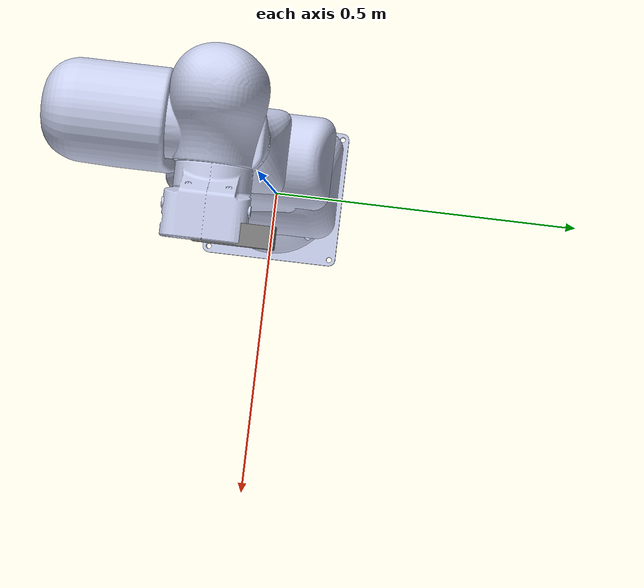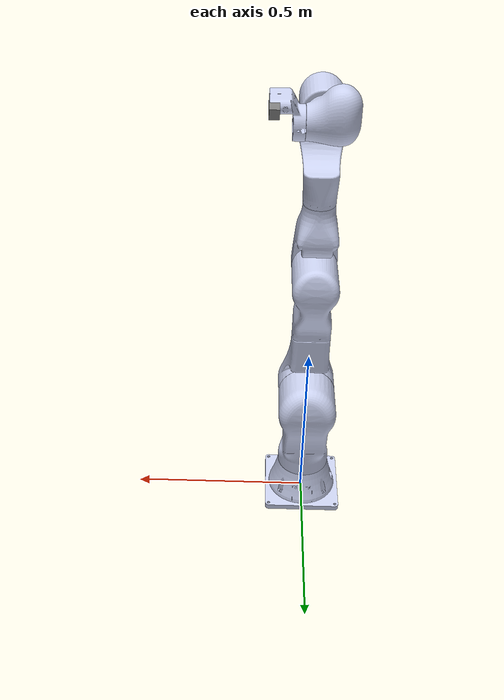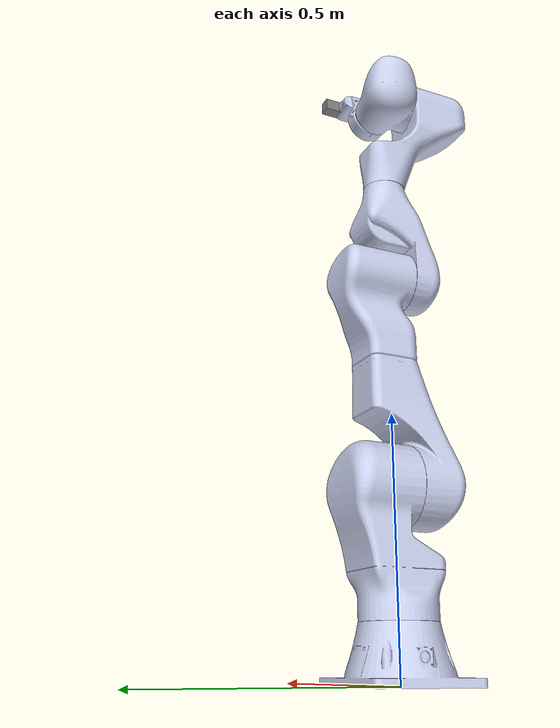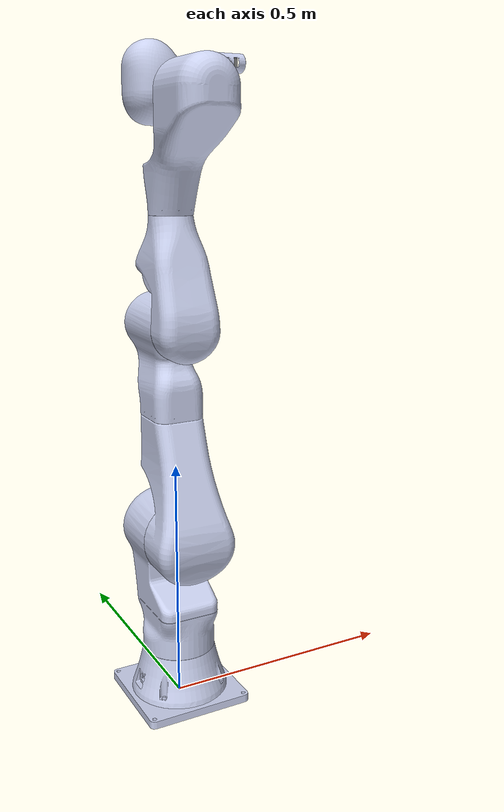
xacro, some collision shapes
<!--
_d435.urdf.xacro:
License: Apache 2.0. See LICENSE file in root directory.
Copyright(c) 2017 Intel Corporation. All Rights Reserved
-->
<?xml version="1.0"?>
<robot name="scorpio" xmlns:xacro="http://www.ros.org/wiki/xacro">

  <xacro:arg name="ns" default=""/>
  <xacro:include filename="$(find scorpio_description)/urdf/arm/arm.urdf.xacro"/>

  <!-- gazebo plugin -->
  <xacro:include filename="$(find scorpio_description)/urdf/common.gazebo.xacro"/>

  <!-- robot arm -->
  <xacro:scorpio_arm ns="$(arg ns)"/>

</robot>

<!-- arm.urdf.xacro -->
<robot xmlns:xacro="http://www.ros.org/wiki/xacro">

  <xacro:include filename="$(find scorpio_description)/urdf/arm/arm.transmission.xacro" />
  <xacro:include filename="$(find scorpio_description)/urdf/sensors/_d435.urdf.xacro" />

  <!-- Inertia calculating -->
  <xacro:macro name="cylinder_inertial" params="radius length mass *origin">
    <inertial>
      <mass value="${mass}" />
      <xacro:insert_block name="origin" />
      <inertia ixx="${0.0833333 * mass * (3 * radius * radius + length * length)}" ixy="0.0" ixz="0.0"
        iyy="${0.0833333 * mass * (3 * radius * radius + length * length)}" iyz="0.0"
        izz="${0.5 * mass * radius * radius}" />
    </inertial>
  </xacro:macro>

  <!-- Inertia parameters -->
  <xacro:property name="base_mass" value="0.01" />  <!-- This mass might be incorrect -->
  <xacro:property name="shoulder_mass" value="0.007778" />
  <xacro:property name="upper_arm_mass" value="0.00593" />
  <xacro:property name="forearm_mass" value="0.00387" />
  <xacro:property name="wrist_1_mass" value="0.00196" />
  <xacro:property name="wrist_2_mass" value="0.00096" />
  <xacro:property name="wrist_3_mass" value="0.000202" />

  <xacro:property name="base_length" value="0.1105" />  <!-- This mass might be incorrect -->
  <xacro:property name="shoulder_length" value="0.2465" />
  <xacro:property name="upper_arm_length" value="0.425" />
  <xacro:property name="forearm_length" value="0.2114" />
  <xacro:property name="wrist_1_length" value="0.2136" />
  <xacro:property name="wrist_2_length" value="0.075" />
  <xacro:property name="wrist_3_length" value="0.01" />

  <!-- Main URDF -->
  <xacro:macro name="scorpio_arm" params="ns">

    <link name="arm_base_link">
      <xacro:cylinder_inertial radius="0.075" length="${base_length}" mass="${base_mass}">
        <origin xyz="0.0 0.0 ${base_length*0.5}" rpy="0 0 0" />
      </xacro:cylinder_inertial>
      <visual>
        <origin xyz="0 0 0" rpy="0 0 0" />
        <geometry>
          <mesh filename="package://scorpio_description/meshes/arm/arm_base_link.STL" />
        </geometry>
        <material name="">
          <color rgba="0.792156862745098 0.819607843137255 0.933333333333333 1" />
        </material>
      </visual>
      <collision>
        <origin xyz="0 0 0" rpy="0 0 0" />
        <geometry>
          <mesh
            filename="package://scorpio_description/meshes/arm/arm_base_link.STL" />
        </geometry>
      </collision>
    </link>

    <joint name="axis1_joint" type="revolute">
      <origin xyz="0 0 0.1105" rpy="0 0 -0.0" />
      <parent link="arm_base_link" />
      <child link="axis1_link" />
      <axis xyz="0 0 1" />
      <limit lower="-3.14" upper="3.14" effort="54.0" velocity="3.2" />
    </joint>

    <link name="axis1_link">
      <xacro:cylinder_inertial radius="0.075" length="${shoulder_length}" mass="${shoulder_mass}">
        <origin xyz="0.0 0.0 ${shoulder_length*0.5}" rpy="0 0 0" />
      </xacro:cylinder_inertial>
      <visual>
        <origin xyz="0 0 0" rpy="0 0 0" />
        <geometry>
          <mesh
            filename="package://scorpio_description/meshes/arm/axis1_link.STL" />
        </geometry>
        <material name="">
          <color rgba="0.792156862745098 0.819607843137255 0.933333333333333 1" />
        </material>
      </visual>
      <collision>
        <origin xyz="0 0 0" rpy="0 0 0" />
        <geometry>
          <mesh filename="package://scorpio_description/meshes/arm/axis1_link.STL" />
        </geometry>
      </collision>
    </link>

    <!--joint1 + joint2 = 0.341 + 0.016-->
    <joint name="axis2_joint" type="revolute">
      <origin xyz="0 -0.021 0.2465" rpy="0 0 0" />
      <parent link="axis1_link" />
      <child link="axis2_link" />
      <axis xyz="0 -1 0" />
      <limit lower="-2.09" upper="2.09" effort="54.0" velocity="3.2" />
    </joint>

    <link name="axis2_link">
      <xacro:cylinder_inertial radius="0.075" length="${upper_arm_length}" mass="${upper_arm_mass}">
        <origin xyz="0.0 0.0 ${upper_arm_length/2}" rpy="0 0 0" />
      </xacro:cylinder_inertial>
      <visual>
        <origin xyz="0 0 0" rpy="0 0 0" />
        <geometry>
          <mesh filename="package://scorpio_description/meshes/arm/axis2_link.STL" />
        </geometry>
        <material name="">
          <color rgba="0.792156862745098 0.819607843137255 0.933333333333333 1" />
        </material>
      </visual>
      <collision>
        <origin xyz="0 0 0" rpy="0 0 0" />
        <geometry>
          <mesh filename="package://scorpio_description/meshes/arm/axis2_link.STL" />
        </geometry>
      </collision>
    </link>

    <joint name="axis3_joint" type="revolute">
      <origin xyz="0 -0.013 0.425" rpy="0 0 0" />
      <parent link="axis2_link" />
      <child link="axis3_link" />
      <axis xyz="0 -1 0" />
      <limit lower="-2.09" upper="0.52" effort="54.0" velocity="3.2" />
    </joint>

    <link name="axis3_link">
      <xacro:cylinder_inertial radius="0.075" length="${forearm_length}" mass="${forearm_mass}">
        <origin xyz="0.0 0.0 ${forearm_length/2}" rpy="0 0 0" />
      </xacro:cylinder_inertial>
      <visual>
        <origin xyz="0 0 0" rpy="0 0 0" />
        <geometry>
          <mesh filename="package://scorpio_description/meshes/arm/axis3_link.STL" />
        </geometry>
        <material name="">
          <color rgba="0.792156862745098 0.819607843137255 0.933333333333333 1" />
        </material>
      </visual>
      <collision>
        <origin xyz="0 0 0" rpy="0 0 0" />
        <geometry>
          <mesh filename="package://scorpio_description/meshes/arm/axis3_link.STL" />
        </geometry>
      </collision>
    </link>

    <joint name="axis4_joint" type="revolute">
      <origin xyz="0 0.034 0.2114" rpy="0 0 0" />
      <parent link="axis3_link" />
      <child link="axis4_link" />
      <axis xyz="0 0 1" />
      <limit lower="-3.0" upper="3.14" effort="54.0" velocity="3.2" />
    </joint>

    <link name="axis4_link">
      <xacro:cylinder_inertial radius="0.075" length="${wrist_1_length}" mass="${wrist_1_mass}">
        <origin xyz="0.0 0.0 ${wrist_1_length/2}" rpy="0 0 0" />
      </xacro:cylinder_inertial>
      <visual>
        <origin xyz="0 0 0" rpy="0 0 0" />
        <geometry>
          <mesh filename="package://scorpio_description/meshes/arm/axis4_link.STL" />
        </geometry>
        <material name="">
          <color rgba="0.792156862745098 0.819607843137255 0.933333333333333 1" />
        </material>
      </visual>
      <collision>
        <origin xyz="0 0 0" rpy="0 0 0" />
        <geometry>
          <mesh filename="package://scorpio_description/meshes/arm/axis4_link.STL" />
        </geometry>
      </collision>
    </link>

    <!--joint4 + joint5 = 0.425-->
    <joint name="axis5_joint" type="revolute">
      <origin xyz="0 -0.06 0.2136" rpy="0 1.57 0" />
      <parent link="axis4_link" />
      <child link="axis5_link" />
      <axis xyz="0 1 0" />
      <limit lower="-2.09" upper="0.77" effort="54.0" velocity="3.2" />
    </joint>

    <link name="axis5_link">
      <xacro:cylinder_inertial radius="0.075" length="${wrist_2_length}" mass="${wrist_2_mass}">
        <origin xyz="0.0 0.06 0.0" rpy="0 0 0" />
      </xacro:cylinder_inertial>
      <visual>
        <origin xyz="0 0 0" rpy="0 0 0" />
        <geometry>
          <mesh filename="package://scorpio_description/meshes/arm/axis5_link.STL" />
        </geometry>
        <material name="">
          <color rgba="0.792156862745098 0.819607843137255 0.933333333333333 1" />
        </material>
      </visual>
      <collision>
        <origin xyz="0 0 0" rpy="0 0 0" />
        <geometry>
          <mesh filename="package://scorpio_description/meshes/arm/axis5_link.STL" />
        </geometry>
      </collision>
    </link>

    <joint name="axis6_joint" type="revolute">
      <origin xyz="0 0.06 0" rpy="0 0 0" />
      <parent link="axis5_link" />
      <child link="axis6_link" />
      <axis xyz="0 0 1" />
      <limit lower="-3.14" upper="3.14" effort="54.0" velocity="3.2" />
    </joint>

    <link name="axis6_link">
      <xacro:cylinder_inertial radius="0.055" length="${wrist_3_length}" mass="${wrist_3_mass}">
        <origin xyz="0.0 0.0 0.0859" rpy="0 0 0" />
      </xacro:cylinder_inertial>
      <collision>
        <!--0.0794 - 0.0035 gap - 0.03 width of camera aidded structure-->
        <origin xyz="0 0 0.0459" rpy="0 0 0" />
        <geometry>
          <mesh filename="package://scorpio_description/meshes/arm/axis6_link.STL" />
        </geometry>
      </collision>
      <visual>
        <origin xyz="0 0 0.0459" rpy="0 0 0" />
        <geometry>
          <mesh filename="package://scorpio_description/meshes/arm/axis6_link.STL" />
        </geometry>
        <material name="">
          <color rgba="0.792156862745098 0.819607843137255 0.933333333333333 1" />
        </material>
      </visual>
    </link>

    <!--joint6 to the first silver line is 0.0794 + gripper length 0.26042 -->
    <joint name="eef_joint" type="fixed">
      <!--origin xyz="0 0 0.33982" rpy="0 0 0" /-->
      <origin xyz="0 0 0.0794" rpy="0 0 0" />
      <parent link="axis6_link" />
      <child link="eef_link" />
    </joint>

    <link name="eef_link"/>

    <!-- Intel realsense-->
    <xacro:sensor_d435 parent="axis6_link">
      <!--origin xyz="-0.055 0.04 0.14682" rpy="0 -1.5708 0"/--> <!--real measure for competition version-->
      <origin xyz="-0.0425 0.035 0.12182" rpy="0 -1.5708 0"/>
    </xacro:sensor_d435>

    <xacro:arm_transmission prefix="axis1" />
    <xacro:arm_transmission prefix="axis2" />
    <xacro:arm_transmission prefix="axis3" />
    <xacro:arm_transmission prefix="axis4" />
    <xacro:arm_transmission prefix="axis5" />
    <xacro:arm_transmission prefix="axis6" />
  </xacro:macro>
</robot>

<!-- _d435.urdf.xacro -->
<robot xmlns:xacro="http://ros.org/wiki/xacro">
  <xacro:include filename="$(find scorpio_description)/urdf/sensors/_d435.gazebo.xacro"/>
  <xacro:macro name="sensor_d435" params="parent *origin">
    <xacro:property name="M_PI" value="3.1415926535897931" />

    <!-- The following values are approximate, and the camera node
     publishing TF values with actual calibrated camera extrinsic values -->
    <xacro:property name="d435_cam_depth_to_left_ir_offset" value="0.0"/>
    <xacro:property name="d435_cam_depth_to_right_ir_offset" value="-0.050"/>
    <xacro:property name="d435_cam_depth_to_color_offset" value="0.015"/>

    <!-- The following values model the aluminum peripherial case for the
  	D435 camera, with the camera joint represented by the actual
  	peripherial camera tripod mount -->
    <xacro:property name="d435_cam_width" value="0.090"/>
    <xacro:property name="d435_cam_height" value="0.025"/>
    <xacro:property name="d435_cam_depth" value="0.02505"/>
    <xacro:property name="d435_cam_mount_from_center_offset" value="0.0149"/>

    <!-- The following offset is relative the the physical D435 camera peripherial
  	camera tripod mount -->
    <xacro:property name="d435_cam_depth_px" value="${d435_cam_mount_from_center_offset}"/>
    <xacro:property name="d435_cam_depth_py" value="0.0175"/>
    <xacro:property name="d435_cam_depth_pz" value="${d435_cam_height/2}"/>

    <material name="aluminum">
	  <color rgba="0.5 0.5 0.5 1"/>
    </material>

    <!-- camera body, with origin at bottom screw mount -->
    <joint name="camera_joint" type="fixed">
      <xacro:insert_block name="origin" />
      <parent link="${parent}"/>
      <child link="camera_link" />
    </joint>

    <link name="camera_link">
      <visual>
      <origin xyz="${d435_cam_mount_from_center_offset} 0.0 ${d435_cam_height/2}" rpy="${M_PI/2} 0 ${M_PI/2}"/>
        <geometry>
	  <mesh filename="package://scorpio_description/meshes/intel_realsense_d435/d435.dae" />

        </geometry>
        <material name="aluminum"/>
      </visual>
      <collision>
        <origin xyz="0.0 0.0 ${d435_cam_height/2}" rpy="0 0 0"/>
        <geometry>
        <box size="${d435_cam_depth} ${d435_cam_width} ${d435_cam_height}"/>
        </geometry>
      </collision>
      <xacro:cylinder_inertial radius="0.01" length="0.01" mass="0.00001">
        <origin xyz="0.0 0.0 0.0" rpy="0 0 0" />
      </xacro:cylinder_inertial>
    </link>

    <!-- camera depth joints and links -->
    <joint name="camera_depth_joint" type="fixed">
      <origin xyz="${d435_cam_depth_px} ${d435_cam_depth_py} ${d435_cam_depth_pz}" rpy="0 0 0"/>
      <parent link="camera_link"/>
      <child link="camera_depth_frame" />
    </joint>
    <link name="camera_depth_frame"/>

    <joint name="camera_depth_optical_joint" type="fixed">
      <origin xyz="0 0 0" rpy="${-M_PI/2} 0 ${-M_PI/2}" />
      <parent link="camera_depth_frame" />
      <child link="camera_depth_optical_frame" />
    </joint>
    <link name="camera_depth_optical_frame"/>

    <!-- camera left IR joints and links -->
    <joint name="camera_left_ir_joint" type="fixed">
      <origin xyz="0 ${d435_cam_depth_to_left_ir_offset} 0" rpy="0 0 0" />
      <parent link="camera_depth_frame" />
      <child link="camera_left_ir_frame" />
    </joint>
    <link name="camera_left_ir_frame"/>

    <joint name="camera_left_ir_optical_joint" type="fixed">
      <origin xyz="0 0 0" rpy="${-M_PI/2} 0 ${-M_PI/2}" />
      <parent link="camera_left_ir_frame" />
      <child link="camera_left_ir_optical_frame" />
    </joint>
    <link name="camera_left_ir_optical_frame"/>

    <!-- camera right IR joints and links -->
    <joint name="camera_right_ir_joint" type="fixed">
      <origin xyz="0 ${d435_cam_depth_to_right_ir_offset} 0" rpy="0 0 0" />
      <parent link="camera_depth_frame" />
      <child link="camera_right_ir_frame" />
    </joint>
    <link name="camera_right_ir_frame"/>

    <joint name="camera_right_ir_optical_joint" type="fixed">
      <origin xyz="0 0 0" rpy="${-M_PI/2} 0 ${-M_PI/2}" />
      <parent link="camera_right_ir_frame" />
      <child link="camera_right_ir_optical_frame" />
    </joint>
    <link name="camera_right_ir_optical_frame"/>

    <!-- camera color joints and links -->
    <joint name="camera_color_joint" type="fixed">
      <origin xyz="0 ${d435_cam_depth_to_color_offset} 0" rpy="0 0 0" />
      <parent link="camera_depth_frame" />
      <child link="camera_color_frame" />
    </joint>
    <link name="camera_color_frame"/>

    <joint name="camera_color_optical_joint" type="fixed">
      <origin xyz="0 0 0" rpy="${-M_PI/2} 0 ${-M_PI/2}" />
      <parent link="camera_color_frame" />
      <child link="camera_color_optical_frame" />
    </joint>
    <link name="camera_color_optical_frame"/>

    <!-- extensions -->
    <xacro:_d435_gazebo name="camera"/>
  </xacro:macro>
</robot>
